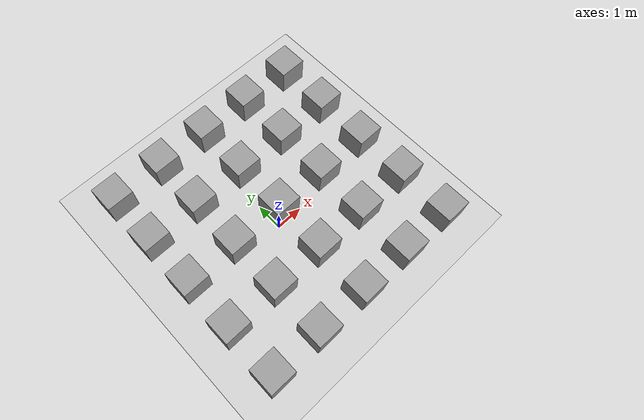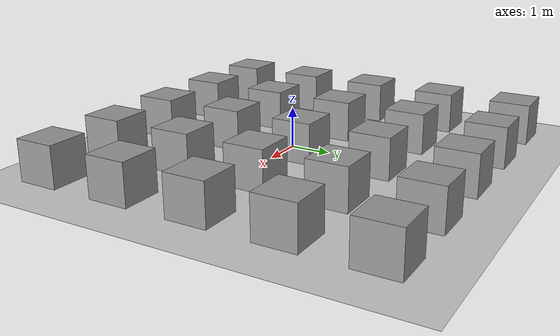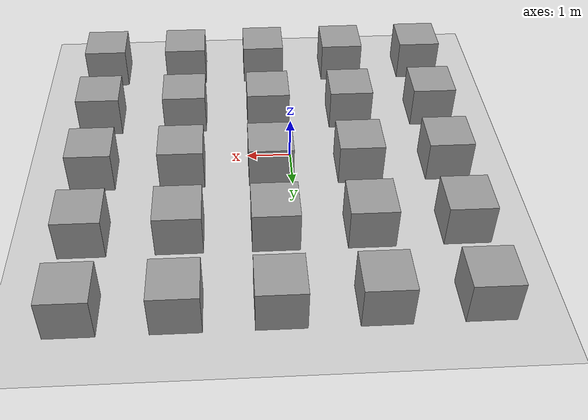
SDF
<sdf version="1.7">
 <world name="default">
  <light name="sun" type="directional">
   <pose>0 0 10 0 -0 0</pose>
   <diffuse>0.8 0.8 0.8 1</diffuse>
   <specular>0.2 0.2 0.2 1</specular>
   <attenuation>
    <range>1000</range>
    <constant>0.9</constant>
    <linear>0.01</linear>
    <quadratic>0.001</quadratic>
   </attenuation>
   <direction>-0.5 0.1 -0.9</direction>
   <spot><inner_angle>0</inner_angle><outer_angle>0</outer_angle><falloff>0</falloff></spot>
  </light>
  <model name="ground_plane">
   <static>1</static>
   <link name="link">
    <collision name="collision">
     <geometry><plane><normal>0 0 1</normal><size>100 100</size></plane></geometry>
     <surface><friction><ode><mu>100</mu><mu2>50</mu2></ode></friction></surface>
    </collision>
    <visual name="visual">
     <cast_shadows>0</cast_shadows>
     <geometry><plane><normal>0 0 1</normal><size>100 100</size></plane></geometry>
     <material>
      <script><uri>file://media/materials/scripts/gazebo.material</uri><name>Gazebo/Grey</name></script>
     </material>
    </visual>
   </link>
  </model>
  <gravity>0 0 -9.8</gravity>
  <magnetic_field>6e-06 2.3e-05 -4.2e-05</magnetic_field>
  <atmosphere type="adiabatic"/>
  <physics type="ode">
   <max_step_size>0.001</max_step_size>
   <real_time_factor>1</real_time_factor>
   <real_time_update_rate>1000</real_time_update_rate>
  </physics>
  <scene><ambient>0.4 0.4 0.4 1</ambient><background>0.7 0.7 0.7 1</background><shadows>1</shadows></scene>
  <spherical_coordinates>
   <surface_model>EARTH_WGS84</surface_model>
   <latitude_deg>0</latitude_deg>
   <longitude_deg>0</longitude_deg>
   <elevation>0</elevation>
   <heading_deg>0</heading_deg>
  </spherical_coordinates>
  <model name="unit_box">
   <pose>0.456673 -1.48696 0.499995 0 1e-05 0</pose>
   <link name="link">
    <inertial>
     <mass>1</mass>
     <inertia>
      <ixx>0.166667</ixx>
      <ixy>0</ixy>
      <ixz>0</ixz>
      <iyy>0.166667</iyy>
      <iyz>0</iyz>
      <izz>0.166667</izz>
     </inertia>
    </inertial>
    <collision name="collision"><geometry><box><size>1 1 1</size></box></geometry></collision>
    <visual name="visual">
     <geometry><box><size>1 1 1</size></box></geometry>
     <material>
      <script><name>Gazebo/Grey</name><uri>file://media/materials/scripts/gazebo.material</uri></script>
     </material>
    </visual>
   </link>
  </model>
  <model name="unit_box_0">
   <pose>2.47592 -3.47661 0.499995 -1e-05 -0 -0</pose>
   <link name="link">
    <inertial>
     <mass>1</mass>
     <inertia>
      <ixx>0.166667</ixx>
      <ixy>0</ixy>
      <ixz>0</ixz>
      <iyy>0.166667</iyy>
      <iyz>0</iyz>
      <izz>0.166667</izz>
     </inertia>
    </inertial>
    <collision name="collision"><geometry><box><size>1 1 1</size></box></geometry></collision>
    <visual name="visual">
     <geometry><box><size>1 1 1</size></box></geometry>
     <material>
      <script><name>Gazebo/Grey</name><uri>file://media/materials/scripts/gazebo.material</uri></script>
     </material>
    </visual>
   </link>
  </model>
  <model name="unit_box_1">
   <pose>2.45472 -1.47288 0.499995 0 1e-05 0</pose>
   <link name="link">
    <inertial>
     <mass>1</mass>
     <inertia>
      <ixx>0.166667</ixx>
      <ixy>0</ixy>
      <ixz>0</ixz>
      <iyy>0.166667</iyy>
      <iyz>0</iyz>
      <izz>0.166667</izz>
     </inertia>
    </inertial>
    <collision name="collision"><geometry><box><size>1 1 1</size></box></geometry></collision>
    <visual name="visual">
     <geometry><box><size>1 1 1</size></box></geometry>
     <material>
      <script><name>Gazebo/Grey</name><uri>file://media/materials/scripts/gazebo.material</uri></script>
     </material>
    </visual>
   </link>
  </model>
  <model name="unit_box_2">
   <pose>0.492061 -3.49098 0.499995 -1e-05 -0 -0</pose>
   <link name="link">
    <inertial>
     <mass>1</mass>
     <inertia>
      <ixx>0.166667</ixx>
      <ixy>0</ixy>
      <ixz>0</ixz>
      <iyy>0.166667</iyy>
      <iyz>0</iyz>
      <izz>0.166667</izz>
     </inertia>
    </inertial>
    <collision name="collision"><geometry><box><size>1 1 1</size></box></geometry></collision>
    <visual name="visual">
     <geometry><box><size>1 1 1</size></box></geometry>
     <material>
      <script><name>Gazebo/Grey</name><uri>file://media/materials/scripts/gazebo.material</uri></script>
     </material>
    </visual>
   </link>
  </model>
  <model name="unit_box_3">
   <pose>-1.51883 -3.48553 0.499995 0 1e-05 0</pose>
   <link name="link">
    <inertial>
     <mass>1</mass>
     <inertia>
      <ixx>0.166667</ixx>
      <ixy>0</ixy>
      <ixz>0</ixz>
      <iyy>0.166667</iyy>
      <iyz>0</iyz>
      <izz>0.166667</izz>
     </inertia>
    </inertial>
    <collision name="collision"><geometry><box><size>1 1 1</size></box></geometry></collision>
    <visual name="visual">
     <geometry><box><size>1 1 1</size></box></geometry>
     <material>
      <script><name>Gazebo/Grey</name><uri>file://media/materials/scripts/gazebo.material</uri></script>
     </material>
    </visual>
   </link>
  </model>
  <model name="unit_box_4">
   <pose>-1.52568 -1.48079 0.499995 -1e-05 -0 -0</pose>
   <link name="link">
    <inertial>
     <mass>1</mass>
     <inertia>
      <ixx>0.166667</ixx>
      <ixy>0</ixy>
      <ixz>0</ixz>
      <iyy>0.166667</iyy>
      <iyz>0</iyz>
      <izz>0.166667</izz>
     </inertia>
    </inertial>
    <collision name="collision"><geometry><box><size>1 1 1</size></box></geometry></collision>
    <visual name="visual">
     <geometry><box><size>1 1 1</size></box></geometry>
     <material>
      <script><name>Gazebo/Grey</name><uri>file://media/materials/scripts/gazebo.material</uri></script>
     </material>
    </visual>
   </link>
  </model>
  <model name="unit_box_5">
   <pose>2.48052 0.516575 0.499995 0 1e-05 0</pose>
   <link name="link">
    <inertial>
     <mass>1</mass>
     <inertia>
      <ixx>0.166667</ixx>
      <ixy>0</ixy>
      <ixz>0</ixz>
      <iyy>0.166667</iyy>
      <iyz>0</iyz>
      <izz>0.166667</izz>
     </inertia>
    </inertial>
    <collision name="collision"><geometry><box><size>1 1 1</size></box></geometry></collision>
    <visual name="visual">
     <geometry><box><size>1 1 1</size></box></geometry>
     <material>
      <script><name>Gazebo/Grey</name><uri>file://media/materials/scripts/gazebo.material</uri></script>
     </material>
    </visual>
   </link>
  </model>
  <model name="unit_box_6">
   <pose>0.484061 0.518367 0.499995 -1e-05 -0 -0</pose>
   <link name="link">
    <inertial>
     <mass>1</mass>
     <inertia>
      <ixx>0.166667</ixx>
      <ixy>0</ixy>
      <ixz>0</ixz>
      <iyy>0.166667</iyy>
      <iyz>0</iyz>
      <izz>0.166667</izz>
     </inertia>
    </inertial>
    <collision name="collision"><geometry><box><size>1 1 1</size></box></geometry></collision>
    <visual name="visual">
     <geometry><box><size>1 1 1</size></box></geometry>
     <material>
      <script><name>Gazebo/Grey</name><uri>file://media/materials/scripts/gazebo.material</uri></script>
     </material>
    </visual>
   </link>
  </model>
  <model name="unit_box_7">
   <pose>-1.52336 0.518263 0.499995 0 1e-05 0</pose>
   <link name="link">
    <inertial>
     <mass>1</mass>
     <inertia>
      <ixx>0.166667</ixx>
      <ixy>0</ixy>
      <ixz>0</ixz>
      <iyy>0.166667</iyy>
      <iyz>0</iyz>
      <izz>0.166667</izz>
     </inertia>
    </inertial>
    <collision name="collision"><geometry><box><size>1 1 1</size></box></geometry></collision>
    <visual name="visual">
     <geometry><box><size>1 1 1</size></box></geometry>
     <material>
      <script><name>Gazebo/Grey</name><uri>file://media/materials/scripts/gazebo.material</uri></script>
     </material>
    </visual>
   </link>
  </model>
  <model name="unit_box_8">
   <pose>0.482754 2.5192 0.499995 -1e-05 -0 -0</pose>
   <link name="link">
    <inertial>
     <mass>1</mass>
     <inertia>
      <ixx>0.166667</ixx>
      <ixy>0</ixy>
      <ixz>0</ixz>
      <iyy>0.166667</iyy>
      <iyz>0</iyz>
      <izz>0.166667</izz>
     </inertia>
    </inertial>
    <collision name="collision"><geometry><box><size>1 1 1</size></box></geometry></collision>
    <visual name="visual">
     <geometry><box><size>1 1 1</size></box></geometry>
     <material>
      <script><name>Gazebo/Grey</name><uri>file://media/materials/scripts/gazebo.material</uri></script>
     </material>
    </visual>
   </link>
  </model>
  <model name="unit_box_9">
   <pose>2.48585 2.51042 0.499995 0 1e-05 0</pose>
   <link name="link">
    <inertial>
     <mass>1</mass>
     <inertia>
      <ixx>0.166667</ixx>
      <ixy>0</ixy>
      <ixz>0</ixz>
      <iyy>0.166667</iyy>
      <iyz>0</iyz>
      <izz>0.166667</izz>
     </inertia>
    </inertial>
    <collision name="collision"><geometry><box><size>1 1 1</size></box></geometry></collision>
    <visual name="visual">
     <geometry><box><size>1 1 1</size></box></geometry>
     <material>
      <script><name>Gazebo/Grey</name><uri>file://media/materials/scripts/gazebo.material</uri></script>
     </material>
    </visual>
   </link>
  </model>
  <model name="unit_box_10">
   <pose>4.4907 2.51954 0.499995 -1e-05 -0 -0</pose>
   <link name="link">
    <inertial>
     <mass>1</mass>
     <inertia>
      <ixx>0.166667</ixx>
      <ixy>0</ixy>
      <ixz>0</ixz>
      <iyy>0.166667</iyy>
      <iyz>0</iyz>
      <izz>0.166667</izz>
     </inertia>
    </inertial>
    <collision name="collision"><geometry><box><size>1 1 1</size></box></geometry></collision>
    <visual name="visual">
     <geometry><box><size>1 1 1</size></box></geometry>
     <material>
      <script><name>Gazebo/Grey</name><uri>file://media/materials/scripts/gazebo.material</uri></script>
     </material>
    </visual>
   </link>
  </model>
  <model name="unit_box_11">
   <pose>4.48297 0.512719 0.499995 0 1e-05 0</pose>
   <link name="link">
    <inertial>
     <mass>1</mass>
     <inertia>
      <ixx>0.166667</ixx>
      <ixy>0</ixy>
      <ixz>0</ixz>
      <iyy>0.166667</iyy>
      <iyz>0</iyz>
      <izz>0.166667</izz>
     </inertia>
    </inertial>
    <collision name="collision"><geometry><box><size>1 1 1</size></box></geometry></collision>
    <visual name="visual">
     <geometry><box><size>1 1 1</size></box></geometry>
     <material>
      <script><name>Gazebo/Grey</name><uri>file://media/materials/scripts/gazebo.material</uri></script>
     </material>
    </visual>
   </link>
  </model>
  <model name="unit_box_12">
   <pose>4.4818 -1.48338 0.499995 -1e-05 -0 -0</pose>
   <link name="link">
    <inertial>
     <mass>1</mass>
     <inertia>
      <ixx>0.166667</ixx>
      <ixy>0</ixy>
      <ixz>0</ixz>
      <iyy>0.166667</iyy>
      <iyz>0</iyz>
      <izz>0.166667</izz>
     </inertia>
    </inertial>
    <collision name="collision"><geometry><box><size>1 1 1</size></box></geometry></collision>
    <visual name="visual">
     <geometry><box><size>1 1 1</size></box></geometry>
     <material>
      <script><name>Gazebo/Grey</name><uri>file://media/materials/scripts/gazebo.material</uri></script>
     </material>
    </visual>
   </link>
  </model>
  <model name="unit_box_13">
   <pose>4.48468 -3.48561 0.499995 0 1e-05 0</pose>
   <link name="link">
    <inertial>
     <mass>1</mass>
     <inertia>
      <ixx>0.166667</ixx>
      <ixy>0</ixy>
      <ixz>0</ixz>
      <iyy>0.166667</iyy>
      <iyz>0</iyz>
      <izz>0.166667</izz>
     </inertia>
    </inertial>
    <collision name="collision"><geometry><box><size>1 1 1</size></box></geometry></collision>
    <visual name="visual">
     <geometry><box><size>1 1 1</size></box></geometry>
     <material>
      <script><name>Gazebo/Grey</name><uri>file://media/materials/scripts/gazebo.material</uri></script>
     </material>
    </visual>
   </link>
  </model>
  <model name="unit_box_14">
   <pose>4.48926 4.52112 0.499995 -1e-05 -0 -0</pose>
   <link name="link">
    <inertial>
     <mass>1</mass>
     <inertia>
      <ixx>0.166667</ixx>
      <ixy>0</ixy>
      <ixz>0</ixz>
      <iyy>0.166667</iyy>
      <iyz>0</iyz>
      <izz>0.166667</izz>
     </inertia>
    </inertial>
    <collision name="collision"><geometry><box><size>1 1 1</size></box></geometry></collision>
    <visual name="visual">
     <geometry><box><size>1 1 1</size></box></geometry>
     <material>
      <script><name>Gazebo/Grey</name><uri>file://media/materials/scripts/gazebo.material</uri></script>
     </material>
    </visual>
   </link>
  </model>
  <model name="unit_box_15">
   <pose>2.48589 4.52029 0.499995 0 1e-05 0</pose>
   <link name="link">
    <inertial>
     <mass>1</mass>
     <inertia>
      <ixx>0.166667</ixx>
      <ixy>0</ixy>
      <ixz>0</ixz>
      <iyy>0.166667</iyy>
      <iyz>0</iyz>
      <izz>0.166667</izz>
     </inertia>
    </inertial>
    <collision name="collision"><geometry><box><size>1 1 1</size></box></geometry></collision>
    <visual name="visual">
     <geometry><box><size>1 1 1</size></box></geometry>
     <material>
      <script><name>Gazebo/Grey</name><uri>file://media/materials/scripts/gazebo.material</uri></script>
     </material>
    </visual>
   </link>
  </model>
  <model name="unit_box_16">
   <pose>0.493664 4.51605 0.499995 -1e-05 -0 -0</pose>
   <link name="link">
    <inertial>
     <mass>1</mass>
     <inertia>
      <ixx>0.166667</ixx>
      <ixy>0</ixy>
      <ixz>0</ixz>
      <iyy>0.166667</iyy>
      <iyz>0</iyz>
      <izz>0.166667</izz>
     </inertia>
    </inertial>
    <collision name="collision"><geometry><box><size>1 1 1</size></box></geometry></collision>
    <visual name="visual">
     <geometry><box><size>1 1 1</size></box></geometry>
     <material>
      <script><name>Gazebo/Grey</name><uri>file://media/materials/scripts/gazebo.material</uri></script>
     </material>
    </visual>
   </link>
  </model>
  <model name="unit_box_17">
   <pose>-1.50965 2.51833 0.499995 0 1e-05 0</pose>
   <link name="link">
    <inertial>
     <mass>1</mass>
     <inertia>
      <ixx>0.166667</ixx>
      <ixy>0</ixy>
      <ixz>0</ixz>
      <iyy>0.166667</iyy>
      <iyz>0</iyz>
      <izz>0.166667</izz>
     </inertia>
    </inertial>
    <collision name="collision"><geometry><box><size>1 1 1</size></box></geometry></collision>
    <visual name="visual">
     <geometry><box><size>1 1 1</size></box></geometry>
     <material>
      <script><name>Gazebo/Grey</name><uri>file://media/materials/scripts/gazebo.material</uri></script>
     </material>
    </visual>
   </link>
  </model>
  <model name="unit_box_18">
   <pose>-1.50733 4.52015 0.499995 -1e-05 -0 -0</pose>
   <link name="link">
    <inertial>
     <mass>1</mass>
     <inertia>
      <ixx>0.166667</ixx>
      <ixy>0</ixy>
      <ixz>0</ixz>
      <iyy>0.166667</iyy>
      <iyz>0</iyz>
      <izz>0.166667</izz>
     </inertia>
    </inertial>
    <collision name="collision"><geometry><box><size>1 1 1</size></box></geometry></collision>
    <visual name="visual">
     <geometry><box><size>1 1 1</size></box></geometry>
     <material>
      <script><name>Gazebo/Grey</name><uri>file://media/materials/scripts/gazebo.material</uri></script>
     </material>
    </visual>
   </link>
  </model>
  <model name="unit_box_19">
   <pose>-3.50931 -3.49164 0.499995 0 1e-05 0</pose>
   <link name="link">
    <inertial>
     <mass>1</mass>
     <inertia>
      <ixx>0.166667</ixx>
      <ixy>0</ixy>
      <ixz>0</ixz>
      <iyy>0.166667</iyy>
      <iyz>0</iyz>
      <izz>0.166667</izz>
     </inertia>
    </inertial>
    <collision name="collision"><geometry><box><size>1 1 1</size></box></geometry></collision>
    <visual name="visual">
     <geometry><box><size>1 1 1</size></box></geometry>
     <material>
      <script><name>Gazebo/Grey</name><uri>file://media/materials/scripts/gazebo.material</uri></script>
     </material>
    </visual>
   </link>
  </model>
  <model name="unit_box_20">
   <pose>-3.51274 -1.49073 0.499995 -1e-05 -0 -0</pose>
   <link name="link">
    <inertial>
     <mass>1</mass>
     <inertia>
      <ixx>0.166667</ixx>
      <ixy>0</ixy>
      <ixz>0</ixz>
      <iyy>0.166667</iyy>
      <iyz>0</iyz>
      <izz>0.166667</izz>
     </inertia>
    </inertial>
    <collision name="collision"><geometry><box><size>1 1 1</size></box></geometry></collision>
    <visual name="visual">
     <geometry><box><size>1 1 1</size></box></geometry>
     <material>
      <script><name>Gazebo/Grey</name><uri>file://media/materials/scripts/gazebo.material</uri></script>
     </material>
    </visual>
   </link>
  </model>
  <model name="unit_box_21">
   <pose>-3.50911 0.506967 0.499995 0 1e-05 0</pose>
   <link name="link">
    <inertial>
     <mass>1</mass>
     <inertia>
      <ixx>0.166667</ixx>
      <ixy>0</ixy>
      <ixz>0</ixz>
      <iyy>0.166667</iyy>
      <iyz>0</iyz>
      <izz>0.166667</izz>
     </inertia>
    </inertial>
    <collision name="collision"><geometry><box><size>1 1 1</size></box></geometry></collision>
    <visual name="visual">
     <geometry><box><size>1 1 1</size></box></geometry>
     <material>
      <script><name>Gazebo/Grey</name><uri>file://media/materials/scripts/gazebo.material</uri></script>
     </material>
    </visual>
   </link>
  </model>
  <model name="unit_box_22">
   <pose>-3.51202 2.50698 0.499995 -1e-05 -0 0</pose>
   <link name="link">
    <inertial>
     <mass>1</mass>
     <inertia>
      <ixx>0.166667</ixx>
      <ixy>0</ixy>
      <ixz>0</ixz>
      <iyy>0.166667</iyy>
      <iyz>0</iyz>
      <izz>0.166667</izz>
     </inertia>
    </inertial>
    <collision name="collision"><geometry><box><size>1 1 1</size></box></geometry></collision>
    <visual name="visual">
     <geometry><box><size>1 1 1</size></box></geometry>
     <material>
      <script><name>Gazebo/Grey</name><uri>file://media/materials/scripts/gazebo.material</uri></script>
     </material>
    </visual>
   </link>
  </model>
  <model name="unit_box_23">
   <pose>-3.51295 4.51111 0.5 0 -0 0</pose>
   <link name="link">
    <inertial>
     <mass>1</mass>
     <inertia>
      <ixx>0.166667</ixx>
      <ixy>0</ixy>
      <ixz>0</ixz>
      <iyy>0.166667</iyy>
      <iyz>0</iyz>
      <izz>0.166667</izz>
     </inertia>
    </inertial>
    <collision name="collision"><geometry><box><size>1 1 1</size></box></geometry></collision>
    <visual name="visual">
     <geometry><box><size>1 1 1</size></box></geometry>
     <material>
      <script><name>Gazebo/Grey</name><uri>file://media/materials/scripts/gazebo.material</uri></script>
     </material>
    </visual>
   </link>
  </model>
 </world>
</sdf>
